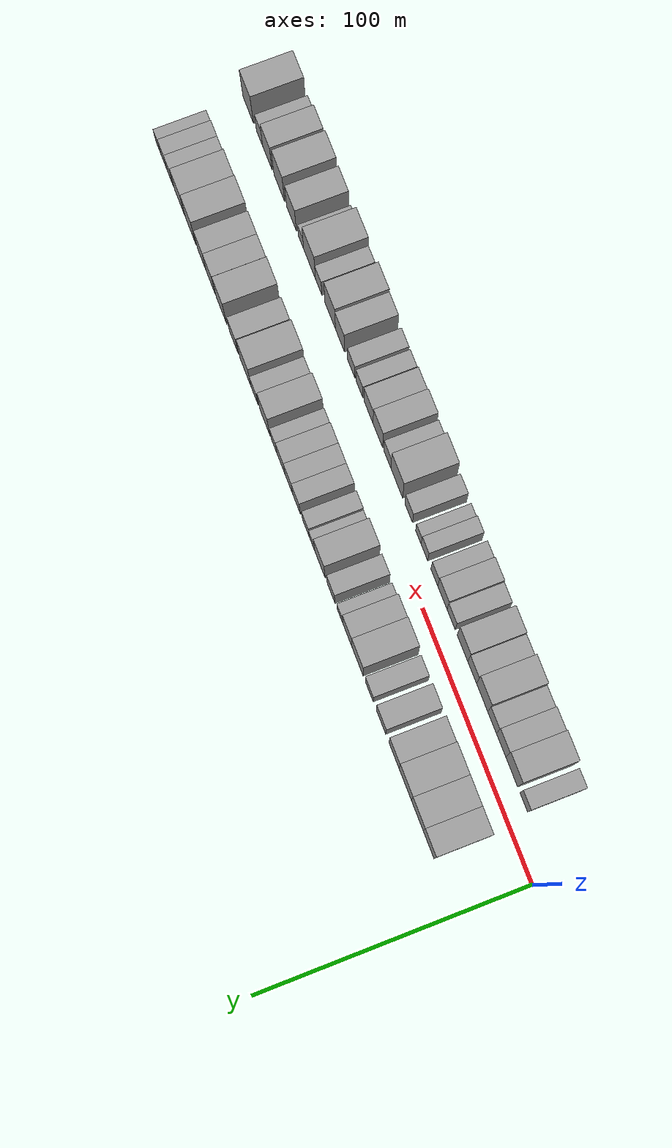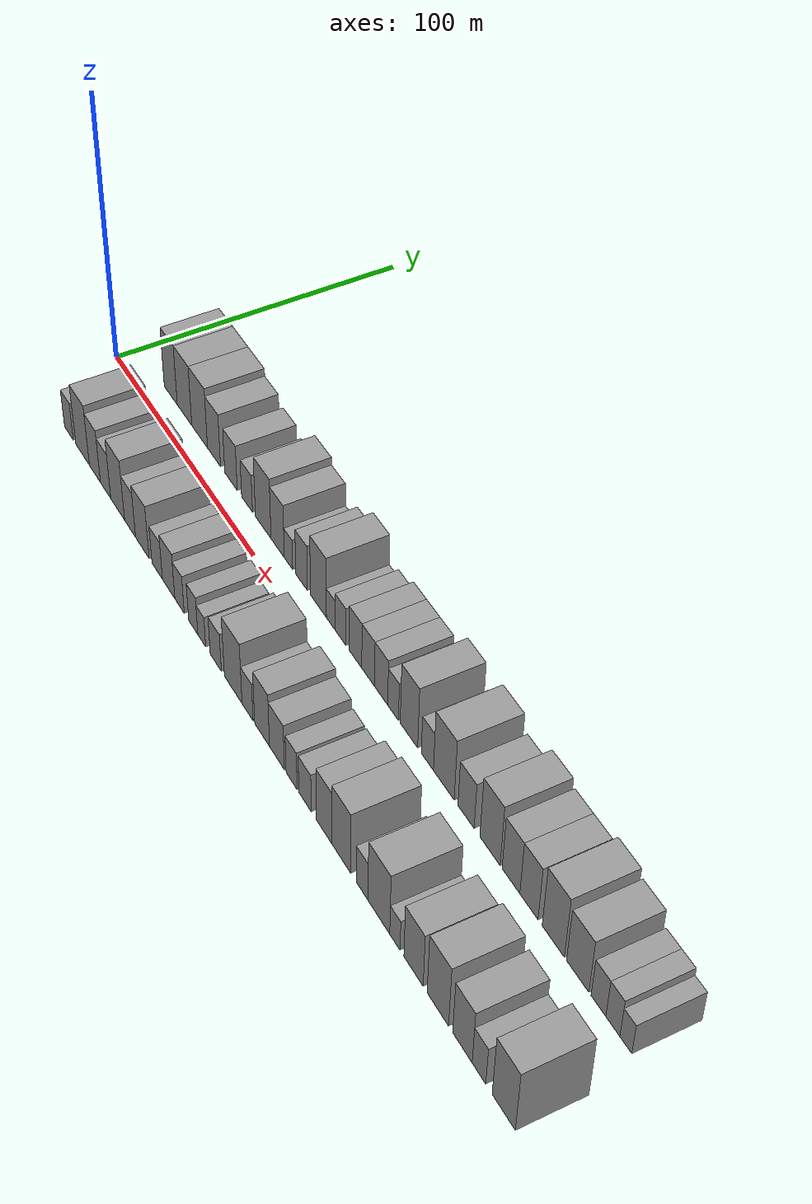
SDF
<sdf version="1.6">
 <world name="default">
  <scene>
   <sky><clouds><speed>12</speed></clouds></sky>
   <ambient>0.4 0.4 0.4 1</ambient>
   <background>0.7 0.7 0.7 1</background>
   <shadows>1</shadows>
  </scene>
  <gravity>0 0 -9.8066</gravity>
  <magnetic_field>6e-06 2.3e-05 -4.2e-05</magnetic_field>
  <physics default="0" name="default_physics" type="ode">
   <ode>
    <solver>
     <type>quick</type>
     <iters>10</iters>
     <sor>1.0</sor>
     <use_dynamic_moi_rescaling>0</use_dynamic_moi_rescaling>
    </solver>
    <constraints>
     <cfm>0</cfm>
     <erp>0.2</erp>
     <contact_max_correcting_vel>100</contact_max_correcting_vel>
     <contact_surface_layer>0.001</contact_surface_layer>
    </constraints>
   </ode>
   <max_step_size>0.004</max_step_size>
   <real_time_factor>1</real_time_factor>
   <real_time_update_rate>250</real_time_update_rate>
  </physics>
  <light name="sun" type="directional">
   <pose>0 0 10 0 0 0</pose>
   <diffuse>0.8 0.8 0.8 1</diffuse>
   <specular>0.2 0.2 0.2 1</specular>
   <attenuation>
    <range>1000</range>
    <constant>0.9</constant>
    <linear>0.01</linear>
    <quadratic>0.001</quadratic>
   </attenuation>
   <direction>-0.5 0.1 -0.9</direction>
  </light>
  <model name="building_1">
   <static>1</static>
   <pose>24.9117 17.5000 0 0.000000 0.000000 1.570796</pose>
   <link name="link">
    <pose>0 0 12.00 0 0 0</pose>
    <collision name="collision"><geometry><box><size>20.0000 9.8234 24.0000</size></box></geometry></collision>
    <visual name="visual">
     <cast_shadows>0</cast_shadows>
     <geometry><box><size>20.0000 9.8234 24.0000</size></box></geometry>
     <material>
      <script>
       <uri>model://grey_wall/materials/scripts</uri>
       <uri>model://grey_wall/materials/textures</uri>
       <name>vrc/grey_wall</name>
      </script>
     </material>
    </visual>
   </link>
  </model>
  <model name="building_2">
   <static>1</static>
   <pose>35.2457 17.5000 0 0.000000 0.000000 1.570796</pose>
   <link name="link">
    <pose>0 0 12.00 0 0 0</pose>
    <collision name="collision"><geometry><box><size>20.0000 10.8446 24.0000</size></box></geometry></collision>
    <visual name="visual">
     <cast_shadows>0</cast_shadows>
     <geometry><box><size>20.0000 10.8446 24.0000</size></box></geometry>
     <material>
      <script>
       <uri>model://grey_wall/materials/scripts</uri>
       <uri>model://grey_wall/materials/textures</uri>
       <name>vrc/grey_wall</name>
      </script>
     </material>
    </visual>
   </link>
  </model>
  <model name="building_3">
   <static>1</static>
   <pose>46.3990 17.5000 0 0.000000 0.000000 1.570796</pose>
   <link name="link">
    <pose>0 0 12.00 0 0 0</pose>
    <collision name="collision"><geometry><box><size>20.0000 11.4619 24.0000</size></box></geometry></collision>
    <visual name="visual">
     <cast_shadows>0</cast_shadows>
     <geometry><box><size>20.0000 11.4619 24.0000</size></box></geometry>
     <material>
      <script>
       <uri>model://grey_wall/materials/scripts</uri>
       <uri>model://grey_wall/materials/textures</uri>
       <name>vrc/grey_wall</name>
      </script>
     </material>
    </visual>
   </link>
  </model>
  <model name="building_4">
   <static>1</static>
   <pose>56.7983 17.5000 0 0.000000 0.000000 1.570796</pose>
   <link name="link">
    <pose>0 0 10.50 0 0 0</pose>
    <collision name="collision"><geometry><box><size>20.0000 9.3368 21.0000</size></box></geometry></collision>
    <visual name="visual">
     <cast_shadows>0</cast_shadows>
     <geometry><box><size>20.0000 9.3368 21.0000</size></box></geometry>
     <material>
      <script>
       <uri>model://grey_wall/materials/scripts</uri>
       <uri>model://grey_wall/materials/textures</uri>
       <name>vrc/grey_wall</name>
      </script>
     </material>
    </visual>
   </link>
  </model>
  <model name="building_5">
   <static>1</static>
   <pose>68.8451 17.5000 0 0.000000 0.000000 1.570796</pose>
   <link name="link">
    <pose>0 0 9.00 0 0 0</pose>
    <collision name="collision"><geometry><box><size>20.0000 8.7569 18.0000</size></box></geometry></collision>
    <visual name="visual">
     <cast_shadows>0</cast_shadows>
     <geometry><box><size>20.0000 8.7569 18.0000</size></box></geometry>
     <material>
      <script>
       <uri>model://grey_wall/materials/scripts</uri>
       <uri>model://grey_wall/materials/textures</uri>
       <name>vrc/grey_wall</name>
      </script>
     </material>
    </visual>
   </link>
  </model>
  <model name="building_6">
   <static>1</static>
   <pose>79.9495 17.5000 0 0.000000 0.000000 1.570796</pose>
   <link name="link">
    <pose>0 0 7.50 0 0 0</pose>
    <collision name="collision"><geometry><box><size>20.0000 7.4519 15.0000</size></box></geometry></collision>
    <visual name="visual">
     <cast_shadows>0</cast_shadows>
     <geometry><box><size>20.0000 7.4519 15.0000</size></box></geometry>
     <material>
      <script>
       <uri>model://grey_wall/materials/scripts</uri>
       <uri>model://grey_wall/materials/textures</uri>
       <name>vrc/grey_wall</name>
      </script>
     </material>
    </visual>
   </link>
  </model>
  <model name="building_7">
   <static>1</static>
   <pose>90.9206 17.5000 0 0.000000 0.000000 1.570796</pose>
   <link name="link">
    <pose>0 0 12.00 0 0 0</pose>
    <collision name="collision"><geometry><box><size>20.0000 10.4904 24.0000</size></box></geometry></collision>
    <visual name="visual">
     <cast_shadows>0</cast_shadows>
     <geometry><box><size>20.0000 10.4904 24.0000</size></box></geometry>
     <material>
      <script>
       <uri>model://grey_wall/materials/scripts</uri>
       <uri>model://grey_wall/materials/textures</uri>
       <name>vrc/grey_wall</name>
      </script>
     </material>
    </visual>
   </link>
  </model>
  <model name="building_8">
   <static>1</static>
   <pose>100.5300 17.5000 0 0.000000 0.000000 1.570796</pose>
   <link name="link">
    <pose>0 0 10.50 0 0 0</pose>
    <collision name="collision"><geometry><box><size>20.0000 8.7284 21.0000</size></box></geometry></collision>
    <visual name="visual">
     <cast_shadows>0</cast_shadows>
     <geometry><box><size>20.0000 8.7284 21.0000</size></box></geometry>
     <material>
      <script>
       <uri>model://grey_wall/materials/scripts</uri>
       <uri>model://grey_wall/materials/textures</uri>
       <name>vrc/grey_wall</name>
      </script>
     </material>
    </visual>
   </link>
  </model>
  <model name="building_9">
   <static>1</static>
   <pose>107.6261 17.5000 0 0.000000 0.000000 1.570796</pose>
   <link name="link">
    <pose>0 0 6.00 0 0 0</pose>
    <collision name="collision"><geometry><box><size>20.0000 5.4639 12.0000</size></box></geometry></collision>
    <visual name="visual">
     <cast_shadows>0</cast_shadows>
     <geometry><box><size>20.0000 5.4639 12.0000</size></box></geometry>
     <material>
      <script>
       <uri>model://grey_wall/materials/scripts</uri>
       <uri>model://grey_wall/materials/textures</uri>
       <name>vrc/grey_wall</name>
      </script>
     </material>
    </visual>
   </link>
  </model>
  <model name="building_10">
   <static>1</static>
   <pose>116.0709 17.5000 0 0.000000 0.000000 1.570796</pose>
   <link name="link">
    <pose>0 0 9.00 0 0 0</pose>
    <collision name="collision"><geometry><box><size>20.0000 7.4257 18.0000</size></box></geometry></collision>
    <visual name="visual">
     <cast_shadows>0</cast_shadows>
     <geometry><box><size>20.0000 7.4257 18.0000</size></box></geometry>
     <material>
      <script>
       <uri>model://grey_wall/materials/scripts</uri>
       <uri>model://grey_wall/materials/textures</uri>
       <name>vrc/grey_wall</name>
      </script>
     </material>
    </visual>
   </link>
  </model>
  <model name="building_11">
   <static>1</static>
   <pose>126.7624 17.5000 0 0.000000 0.000000 1.570796</pose>
   <link name="link">
    <pose>0 0 12.00 0 0 0</pose>
    <collision name="collision"><geometry><box><size>20.0000 9.9573 24.0000</size></box></geometry></collision>
    <visual name="visual">
     <cast_shadows>0</cast_shadows>
     <geometry><box><size>20.0000 9.9573 24.0000</size></box></geometry>
     <material>
      <script>
       <uri>model://grey_wall/materials/scripts</uri>
       <uri>model://grey_wall/materials/textures</uri>
       <name>vrc/grey_wall</name>
      </script>
     </material>
    </visual>
   </link>
  </model>
  <model name="building_12">
   <static>1</static>
   <pose>134.4356 17.5000 0 0.000000 0.000000 1.570796</pose>
   <link name="link">
    <pose>0 0 6.00 0 0 0</pose>
    <collision name="collision"><geometry><box><size>20.0000 5.3891 12.0000</size></box></geometry></collision>
    <visual name="visual">
     <cast_shadows>0</cast_shadows>
     <geometry><box><size>20.0000 5.3891 12.0000</size></box></geometry>
     <material>
      <script>
       <uri>model://grey_wall/materials/scripts</uri>
       <uri>model://grey_wall/materials/textures</uri>
       <name>vrc/grey_wall</name>
      </script>
     </material>
    </visual>
   </link>
  </model>
  <model name="building_13">
   <static>1</static>
   <pose>140.4093 17.5000 0 0.000000 0.000000 1.570796</pose>
   <link name="link">
    <pose>0 0 7.50 0 0 0</pose>
    <collision name="collision"><geometry><box><size>20.0000 6.5584 15.0000</size></box></geometry></collision>
    <visual name="visual">
     <cast_shadows>0</cast_shadows>
     <geometry><box><size>20.0000 6.5584 15.0000</size></box></geometry>
     <material>
      <script>
       <uri>model://grey_wall/materials/scripts</uri>
       <uri>model://grey_wall/materials/textures</uri>
       <name>vrc/grey_wall</name>
      </script>
     </material>
    </visual>
   </link>
  </model>
  <model name="building_14">
   <static>1</static>
   <pose>149.4242 17.5000 0 0.000000 0.000000 1.570796</pose>
   <link name="link">
    <pose>0 0 9.00 0 0 0</pose>
    <collision name="collision"><geometry><box><size>20.0000 7.4716 18.0000</size></box></geometry></collision>
    <visual name="visual">
     <cast_shadows>0</cast_shadows>
     <geometry><box><size>20.0000 7.4716 18.0000</size></box></geometry>
     <material>
      <script>
       <uri>model://grey_wall/materials/scripts</uri>
       <uri>model://grey_wall/materials/textures</uri>
       <name>vrc/grey_wall</name>
      </script>
     </material>
    </visual>
   </link>
  </model>
  <model name="building_15">
   <static>1</static>
   <pose>156.9158 17.5000 0 0.000000 0.000000 1.570796</pose>
   <link name="link">
    <pose>0 0 9.00 0 0 0</pose>
    <collision name="collision"><geometry><box><size>20.0000 7.5116 18.0000</size></box></geometry></collision>
    <visual name="visual">
     <cast_shadows>0</cast_shadows>
     <geometry><box><size>20.0000 7.5116 18.0000</size></box></geometry>
     <material>
      <script>
       <uri>model://grey_wall/materials/scripts</uri>
       <uri>model://grey_wall/materials/textures</uri>
       <name>vrc/grey_wall</name>
      </script>
     </material>
    </visual>
   </link>
  </model>
  <model name="building_16">
   <static>1</static>
   <pose>164.5097 17.5000 0 0.000000 0.000000 1.570796</pose>
   <link name="link">
    <pose>0 0 9.00 0 0 0</pose>
    <collision name="collision"><geometry><box><size>20.0000 7.6762 18.0000</size></box></geometry></collision>
    <visual name="visual">
     <cast_shadows>0</cast_shadows>
     <geometry><box><size>20.0000 7.6762 18.0000</size></box></geometry>
     <material>
      <script>
       <uri>model://grey_wall/materials/scripts</uri>
       <uri>model://grey_wall/materials/textures</uri>
       <name>vrc/grey_wall</name>
      </script>
     </material>
    </visual>
   </link>
  </model>
  <model name="building_17">
   <static>1</static>
   <pose>171.4271 17.5000 0 0.000000 0.000000 1.570796</pose>
   <link name="link">
    <pose>0 0 7.50 0 0 0</pose>
    <collision name="collision"><geometry><box><size>20.0000 6.1585 15.0000</size></box></geometry></collision>
    <visual name="visual">
     <cast_shadows>0</cast_shadows>
     <geometry><box><size>20.0000 6.1585 15.0000</size></box></geometry>
     <material>
      <script>
       <uri>model://grey_wall/materials/scripts</uri>
       <uri>model://grey_wall/materials/textures</uri>
       <name>vrc/grey_wall</name>
      </script>
     </material>
    </visual>
   </link>
  </model>
  <model name="building_18">
   <static>1</static>
   <pose>180.4077 17.5000 0 0.000000 0.000000 1.570796</pose>
   <link name="link">
    <pose>0 0 12.00 0 0 0</pose>
    <collision name="collision"><geometry><box><size>20.0000 9.8027 24.0000</size></box></geometry></collision>
    <visual name="visual">
     <cast_shadows>0</cast_shadows>
     <geometry><box><size>20.0000 9.8027 24.0000</size></box></geometry>
     <material>
      <script>
       <uri>model://grey_wall/materials/scripts</uri>
       <uri>model://grey_wall/materials/textures</uri>
       <name>vrc/grey_wall</name>
      </script>
     </material>
    </visual>
   </link>
  </model>
  <model name="building_19">
   <static>1</static>
   <pose>190.6633 17.5000 0 0.000000 0.000000 1.570796</pose>
   <link name="link">
    <pose>0 0 7.50 0 0 0</pose>
    <collision name="collision"><geometry><box><size>20.0000 6.7086 15.0000</size></box></geometry></collision>
    <visual name="visual">
     <cast_shadows>0</cast_shadows>
     <geometry><box><size>20.0000 6.7086 15.0000</size></box></geometry>
     <material>
      <script>
       <uri>model://grey_wall/materials/scripts</uri>
       <uri>model://grey_wall/materials/textures</uri>
       <name>vrc/grey_wall</name>
      </script>
     </material>
    </visual>
   </link>
  </model>
  <model name="building_20">
   <static>1</static>
   <pose>199.6065 17.5000 0 0.000000 0.000000 1.570796</pose>
   <link name="link">
    <pose>0 0 12.00 0 0 0</pose>
    <collision name="collision"><geometry><box><size>20.0000 11.1778 24.0000</size></box></geometry></collision>
    <visual name="visual">
     <cast_shadows>0</cast_shadows>
     <geometry><box><size>20.0000 11.1778 24.0000</size></box></geometry>
     <material>
      <script>
       <uri>model://grey_wall/materials/scripts</uri>
       <uri>model://grey_wall/materials/textures</uri>
       <name>vrc/grey_wall</name>
      </script>
     </material>
    </visual>
   </link>
  </model>
  <model name="building_21">
   <static>1</static>
   <pose>211.4469 17.5000 0 0.000000 0.000000 1.570796</pose>
   <link name="link">
    <pose>0 0 9.00 0 0 0</pose>
    <collision name="collision"><geometry><box><size>20.0000 8.5030 18.0000</size></box></geometry></collision>
    <visual name="visual">
     <cast_shadows>0</cast_shadows>
     <geometry><box><size>20.0000 8.5030 18.0000</size></box></geometry>
     <material>
      <script>
       <uri>model://grey_wall/materials/scripts</uri>
       <uri>model://grey_wall/materials/textures</uri>
       <name>vrc/grey_wall</name>
      </script>
     </material>
    </visual>
   </link>
  </model>
  <model name="building_22">
   <static>1</static>
   <pose>223.8881 17.5000 0 0.000000 0.000000 1.570796</pose>
   <link name="link">
    <pose>0 0 12.00 0 0 0</pose>
    <collision name="collision"><geometry><box><size>20.0000 10.3796 24.0000</size></box></geometry></collision>
    <visual name="visual">
     <cast_shadows>0</cast_shadows>
     <geometry><box><size>20.0000 10.3796 24.0000</size></box></geometry>
     <material>
      <script>
       <uri>model://grey_wall/materials/scripts</uri>
       <uri>model://grey_wall/materials/textures</uri>
       <name>vrc/grey_wall</name>
      </script>
     </material>
    </visual>
   </link>
  </model>
  <model name="building_23">
   <static>1</static>
   <pose>234.5119 17.5000 0 0.000000 0.000000 1.570796</pose>
   <link name="link">
    <pose>0 0 10.50 0 0 0</pose>
    <collision name="collision"><geometry><box><size>20.0000 8.8680 21.0000</size></box></geometry></collision>
    <visual name="visual">
     <cast_shadows>0</cast_shadows>
     <geometry><box><size>20.0000 8.8680 21.0000</size></box></geometry>
     <material>
      <script>
       <uri>model://grey_wall/materials/scripts</uri>
       <uri>model://grey_wall/materials/textures</uri>
       <name>vrc/grey_wall</name>
      </script>
     </material>
    </visual>
   </link>
  </model>
  <model name="building_24">
   <static>1</static>
   <pose>243.3995 17.5000 0 0.000000 0.000000 1.570796</pose>
   <link name="link">
    <pose>0 0 10.50 0 0 0</pose>
    <collision name="collision"><geometry><box><size>20.0000 8.9071 21.0000</size></box></geometry></collision>
    <visual name="visual">
     <cast_shadows>0</cast_shadows>
     <geometry><box><size>20.0000 8.9071 21.0000</size></box></geometry>
     <material>
      <script>
       <uri>model://grey_wall/materials/scripts</uri>
       <uri>model://grey_wall/materials/textures</uri>
       <name>vrc/grey_wall</name>
      </script>
     </material>
    </visual>
   </link>
  </model>
  <model name="building_25">
   <static>1</static>
   <pose>255.1642 17.5000 0 0.000000 0.000000 1.570796</pose>
   <link name="link">
    <pose>0 0 12.00 0 0 0</pose>
    <collision name="collision"><geometry><box><size>20.0000 10.6224 24.0000</size></box></geometry></collision>
    <visual name="visual">
     <cast_shadows>0</cast_shadows>
     <geometry><box><size>20.0000 10.6224 24.0000</size></box></geometry>
     <material>
      <script>
       <uri>model://grey_wall/materials/scripts</uri>
       <uri>model://grey_wall/materials/textures</uri>
       <name>vrc/grey_wall</name>
      </script>
     </material>
    </visual>
   </link>
  </model>
  <model name="building_26">
   <static>1</static>
   <pose>266.6777 17.5000 0 0.000000 0.000000 1.570796</pose>
   <link name="link">
    <pose>0 0 10.50 0 0 0</pose>
    <collision name="collision"><geometry><box><size>20.0000 10.4044 21.0000</size></box></geometry></collision>
    <visual name="visual">
     <cast_shadows>0</cast_shadows>
     <geometry><box><size>20.0000 10.4044 21.0000</size></box></geometry>
     <material>
      <script>
       <uri>model://grey_wall/materials/scripts</uri>
       <uri>model://grey_wall/materials/textures</uri>
       <name>vrc/grey_wall</name>
      </script>
     </material>
    </visual>
   </link>
  </model>
  <model name="building_27">
   <static>1</static>
   <pose>276.2367 17.5000 0 0.000000 0.000000 1.570796</pose>
   <link name="link">
    <pose>0 0 7.50 0 0 0</pose>
    <collision name="collision"><geometry><box><size>20.0000 6.7136 15.0000</size></box></geometry></collision>
    <visual name="visual">
     <cast_shadows>0</cast_shadows>
     <geometry><box><size>20.0000 6.7136 15.0000</size></box></geometry>
     <material>
      <script>
       <uri>model://grey_wall/materials/scripts</uri>
       <uri>model://grey_wall/materials/textures</uri>
       <name>vrc/grey_wall</name>
      </script>
     </material>
    </visual>
   </link>
  </model>
  <model name="building_28">
   <static>1</static>
   <pose>282.7351 17.5000 0 0.000000 0.000000 1.570796</pose>
   <link name="link">
    <pose>0 0 7.50 0 0 0</pose>
    <collision name="collision"><geometry><box><size>20.0000 6.2833 15.0000</size></box></geometry></collision>
    <visual name="visual">
     <cast_shadows>0</cast_shadows>
     <geometry><box><size>20.0000 6.2833 15.0000</size></box></geometry>
     <material>
      <script>
       <uri>model://grey_wall/materials/scripts</uri>
       <uri>model://grey_wall/materials/textures</uri>
       <name>vrc/grey_wall</name>
      </script>
     </material>
    </visual>
   </link>
  </model>
  <model name="building_29">
   <static>1</static>
   <pose>288.5434 17.5000 0 0.000000 0.000000 1.570796</pose>
   <link name="link">
    <pose>0 0 6.00 0 0 0</pose>
    <collision name="collision"><geometry><box><size>20.0000 5.3332 12.0000</size></box></geometry></collision>
    <visual name="visual">
     <cast_shadows>0</cast_shadows>
     <geometry><box><size>20.0000 5.3332 12.0000</size></box></geometry>
     <material>
      <script>
       <uri>model://grey_wall/materials/scripts</uri>
       <uri>model://grey_wall/materials/textures</uri>
       <name>vrc/grey_wall</name>
      </script>
     </material>
    </visual>
   </link>
  </model>
  <model name="building_30">
   <static>1</static>
   <pose>26.4767 -17.5000 0 0.000000 0.000000 1.570796</pose>
   <link name="link">
    <pose>0 0 7.50 0 0 0</pose>
    <collision name="collision"><geometry><box><size>20.0000 6.9533 15.0000</size></box></geometry></collision>
    <visual name="visual">
     <cast_shadows>0</cast_shadows>
     <geometry><box><size>20.0000 6.9533 15.0000</size></box></geometry>
     <material>
      <script>
       <uri>model://grey_wall/materials/scripts</uri>
       <uri>model://grey_wall/materials/textures</uri>
       <name>vrc/grey_wall</name>
      </script>
     </material>
    </visual>
   </link>
  </model>
  <model name="building_31">
   <static>1</static>
   <pose>37.3039 -17.5000 0 0.000000 0.000000 1.570796</pose>
   <link name="link">
    <pose>0 0 12.00 0 0 0</pose>
    <collision name="collision"><geometry><box><size>20.0000 10.7011 24.0000</size></box></geometry></collision>
    <visual name="visual">
     <cast_shadows>0</cast_shadows>
     <geometry><box><size>20.0000 10.7011 24.0000</size></box></geometry>
     <material>
      <script>
       <uri>model://grey_wall/materials/scripts</uri>
       <uri>model://grey_wall/materials/textures</uri>
       <name>vrc/grey_wall</name>
      </script>
     </material>
    </visual>
   </link>
  </model>
  <model name="building_32">
   <static>1</static>
   <pose>46.9244 -17.5000 0 0.000000 0.000000 1.570796</pose>
   <link name="link">
    <pose>0 0 10.50 0 0 0</pose>
    <collision name="collision"><geometry><box><size>20.0000 8.5400 21.0000</size></box></geometry></collision>
    <visual name="visual">
     <cast_shadows>0</cast_shadows>
     <geometry><box><size>20.0000 8.5400 21.0000</size></box></geometry>
     <material>
      <script>
       <uri>model://grey_wall/materials/scripts</uri>
       <uri>model://grey_wall/materials/textures</uri>
       <name>vrc/grey_wall</name>
      </script>
     </material>
    </visual>
   </link>
  </model>
  <model name="building_33">
   <static>1</static>
   <pose>55.1166 -17.5000 0 0.000000 0.000000 1.570796</pose>
   <link name="link">
    <pose>0 0 9.00 0 0 0</pose>
    <collision name="collision"><geometry><box><size>20.0000 7.8444 18.0000</size></box></geometry></collision>
    <visual name="visual">
     <cast_shadows>0</cast_shadows>
     <geometry><box><size>20.0000 7.8444 18.0000</size></box></geometry>
     <material>
      <script>
       <uri>model://grey_wall/materials/scripts</uri>
       <uri>model://grey_wall/materials/textures</uri>
       <name>vrc/grey_wall</name>
      </script>
     </material>
    </visual>
   </link>
  </model>
  <model name="building_34">
   <static>1</static>
   <pose>64.1968 -17.5000 0 0.000000 0.000000 1.570796</pose>
   <link name="link">
    <pose>0 0 12.00 0 0 0</pose>
    <collision name="collision"><geometry><box><size>20.0000 10.3160 24.0000</size></box></geometry></collision>
    <visual name="visual">
     <cast_shadows>0</cast_shadows>
     <geometry><box><size>20.0000 10.3160 24.0000</size></box></geometry>
     <material>
      <script>
       <uri>model://grey_wall/materials/scripts</uri>
       <uri>model://grey_wall/materials/textures</uri>
       <name>vrc/grey_wall</name>
      </script>
     </material>
    </visual>
   </link>
  </model>
  <model name="building_35">
   <static>1</static>
   <pose>73.3608 -17.5000 0 0.000000 0.000000 1.570796</pose>
   <link name="link">
    <pose>0 0 9.00 0 0 0</pose>
    <collision name="collision"><geometry><box><size>20.0000 8.0120 18.0000</size></box></geometry></collision>
    <visual name="visual">
     <cast_shadows>0</cast_shadows>
     <geometry><box><size>20.0000 8.0120 18.0000</size></box></geometry>
     <material>
      <script>
       <uri>model://grey_wall/materials/scripts</uri>
       <uri>model://grey_wall/materials/textures</uri>
       <name>vrc/grey_wall</name>
      </script>
     </material>
    </visual>
   </link>
  </model>
  <model name="building_36">
   <static>1</static>
   <pose>82.2645 -17.5000 0 0.000000 0.000000 1.570796</pose>
   <link name="link">
    <pose>0 0 10.50 0 0 0</pose>
    <collision name="collision"><geometry><box><size>20.0000 9.7955 21.0000</size></box></geometry></collision>
    <visual name="visual">
     <cast_shadows>0</cast_shadows>
     <geometry><box><size>20.0000 9.7955 21.0000</size></box></geometry>
     <material>
      <script>
       <uri>model://grey_wall/materials/scripts</uri>
       <uri>model://grey_wall/materials/textures</uri>
       <name>vrc/grey_wall</name>
      </script>
     </material>
    </visual>
   </link>
  </model>
  <model name="building_37">
   <static>1</static>
   <pose>92.8717 -17.5000 0 0.000000 0.000000 1.570796</pose>
   <link name="link">
    <pose>0 0 7.50 0 0 0</pose>
    <collision name="collision"><geometry><box><size>20.0000 7.4189 15.0000</size></box></geometry></collision>
    <visual name="visual">
     <cast_shadows>0</cast_shadows>
     <geometry><box><size>20.0000 7.4189 15.0000</size></box></geometry>
     <material>
      <script>
       <uri>model://grey_wall/materials/scripts</uri>
       <uri>model://grey_wall/materials/textures</uri>
       <name>vrc/grey_wall</name>
      </script>
     </material>
    </visual>
   </link>
  </model>
  <model name="building_38">
   <static>1</static>
   <pose>100.8918 -17.5000 0 0.000000 0.000000 1.570796</pose>
   <link name="link">
    <pose>0 0 9.00 0 0 0</pose>
    <collision name="collision"><geometry><box><size>20.0000 8.6213 18.0000</size></box></geometry></collision>
    <visual name="visual">
     <cast_shadows>0</cast_shadows>
     <geometry><box><size>20.0000 8.6213 18.0000</size></box></geometry>
     <material>
      <script>
       <uri>model://grey_wall/materials/scripts</uri>
       <uri>model://grey_wall/materials/textures</uri>
       <name>vrc/grey_wall</name>
      </script>
     </material>
    </visual>
   </link>
  </model>
  <model name="building_39">
   <static>1</static>
   <pose>108.4394 -17.5000 0 0.000000 0.000000 1.570796</pose>
   <link name="link">
    <pose>0 0 7.50 0 0 0</pose>
    <collision name="collision"><geometry><box><size>20.0000 6.4739 15.0000</size></box></geometry></collision>
    <visual name="visual">
     <cast_shadows>0</cast_shadows>
     <geometry><box><size>20.0000 6.4739 15.0000</size></box></geometry>
     <material>
      <script>
       <uri>model://grey_wall/materials/scripts</uri>
       <uri>model://grey_wall/materials/textures</uri>
       <name>vrc/grey_wall</name>
      </script>
     </material>
    </visual>
   </link>
  </model>
  <model name="building_40">
   <static>1</static>
   <pose>117.7674 -17.5000 0 0.000000 0.000000 1.570796</pose>
   <link name="link">
    <pose>0 0 7.50 0 0 0</pose>
    <collision name="collision"><geometry><box><size>20.0000 6.1821 15.0000</size></box></geometry></collision>
    <visual name="visual">
     <cast_shadows>0</cast_shadows>
     <geometry><box><size>20.0000 6.1821 15.0000</size></box></geometry>
     <material>
      <script>
       <uri>model://grey_wall/materials/scripts</uri>
       <uri>model://grey_wall/materials/textures</uri>
       <name>vrc/grey_wall</name>
      </script>
     </material>
    </visual>
   </link>
  </model>
  <model name="building_41">
   <static>1</static>
   <pose>123.4606 -17.5000 0 0.000000 0.000000 1.570796</pose>
   <link name="link">
    <pose>0 0 6.00 0 0 0</pose>
    <collision name="collision"><geometry><box><size>20.0000 5.2042 12.0000</size></box></geometry></collision>
    <visual name="visual">
     <cast_shadows>0</cast_shadows>
     <geometry><box><size>20.0000 5.2042 12.0000</size></box></geometry>
     <material>
      <script>
       <uri>model://grey_wall/materials/scripts</uri>
       <uri>model://grey_wall/materials/textures</uri>
       <name>vrc/grey_wall</name>
      </script>
     </material>
    </visual>
   </link>
  </model>
  <model name="building_42">
   <static>1</static>
   <pose>132.6906 -17.5000 0 0.000000 0.000000 1.570796</pose>
   <link name="link">
    <pose>0 0 7.50 0 0 0</pose>
    <collision name="collision"><geometry><box><size>20.0000 7.2560 15.0000</size></box></geometry></collision>
    <visual name="visual">
     <cast_shadows>0</cast_shadows>
     <geometry><box><size>20.0000 7.2560 15.0000</size></box></geometry>
     <material>
      <script>
       <uri>model://grey_wall/materials/scripts</uri>
       <uri>model://grey_wall/materials/textures</uri>
       <name>vrc/grey_wall</name>
      </script>
     </material>
    </visual>
   </link>
  </model>
  <model name="building_43">
   <static>1</static>
   <pose>143.9384 -17.5000 0 0.000000 0.000000 1.570796</pose>
   <link name="link">
    <pose>0 0 12.00 0 0 0</pose>
    <collision name="collision"><geometry><box><size>20.0000 11.2396 24.0000</size></box></geometry></collision>
    <visual name="visual">
     <cast_shadows>0</cast_shadows>
     <geometry><box><size>20.0000 11.2396 24.0000</size></box></geometry>
     <material>
      <script>
       <uri>model://grey_wall/materials/scripts</uri>
       <uri>model://grey_wall/materials/textures</uri>
       <name>vrc/grey_wall</name>
      </script>
     </material>
    </visual>
   </link>
  </model>
  <model name="building_44">
   <static>1</static>
   <pose>153.0250 -17.5000 0 0.000000 0.000000 1.570796</pose>
   <link name="link">
    <pose>0 0 7.50 0 0 0</pose>
    <collision name="collision"><geometry><box><size>20.0000 6.9337 15.0000</size></box></geometry></collision>
    <visual name="visual">
     <cast_shadows>0</cast_shadows>
     <geometry><box><size>20.0000 6.9337 15.0000</size></box></geometry>
     <material>
      <script>
       <uri>model://grey_wall/materials/scripts</uri>
       <uri>model://grey_wall/materials/textures</uri>
       <name>vrc/grey_wall</name>
      </script>
     </material>
    </visual>
   </link>
  </model>
  <model name="building_45">
   <static>1</static>
   <pose>162.0478 -17.5000 0 0.000000 0.000000 1.570796</pose>
   <link name="link">
    <pose>0 0 10.50 0 0 0</pose>
    <collision name="collision"><geometry><box><size>20.0000 9.1119 21.0000</size></box></geometry></collision>
    <visual name="visual">
     <cast_shadows>0</cast_shadows>
     <geometry><box><size>20.0000 9.1119 21.0000</size></box></geometry>
     <material>
      <script>
       <uri>model://grey_wall/materials/scripts</uri>
       <uri>model://grey_wall/materials/textures</uri>
       <name>vrc/grey_wall</name>
      </script>
     </material>
    </visual>
   </link>
  </model>
  <model name="building_46">
   <static>1</static>
   <pose>171.0785 -17.5000 0 0.000000 0.000000 1.570796</pose>
   <link name="link">
    <pose>0 0 9.00 0 0 0</pose>
    <collision name="collision"><geometry><box><size>20.0000 8.9495 18.0000</size></box></geometry></collision>
    <visual name="visual">
     <cast_shadows>0</cast_shadows>
     <geometry><box><size>20.0000 8.9495 18.0000</size></box></geometry>
     <material>
      <script>
       <uri>model://grey_wall/materials/scripts</uri>
       <uri>model://grey_wall/materials/textures</uri>
       <name>vrc/grey_wall</name>
      </script>
     </material>
    </visual>
   </link>
  </model>
  <model name="building_47">
   <static>1</static>
   <pose>179.8401 -17.5000 0 0.000000 0.000000 1.570796</pose>
   <link name="link">
    <pose>0 0 7.50 0 0 0</pose>
    <collision name="collision"><geometry><box><size>20.0000 6.5736 15.0000</size></box></geometry></collision>
    <visual name="visual">
     <cast_shadows>0</cast_shadows>
     <geometry><box><size>20.0000 6.5736 15.0000</size></box></geometry>
     <material>
      <script>
       <uri>model://grey_wall/materials/scripts</uri>
       <uri>model://grey_wall/materials/textures</uri>
       <name>vrc/grey_wall</name>
      </script>
     </material>
    </visual>
   </link>
  </model>
  <model name="building_48">
   <static>1</static>
   <pose>187.7456 -17.5000 0 0.000000 0.000000 1.570796</pose>
   <link name="link">
    <pose>0 0 7.50 0 0 0</pose>
    <collision name="collision"><geometry><box><size>20.0000 7.2375 15.0000</size></box></geometry></collision>
    <visual name="visual">
     <cast_shadows>0</cast_shadows>
     <geometry><box><size>20.0000 7.2375 15.0000</size></box></geometry>
     <material>
      <script>
       <uri>model://grey_wall/materials/scripts</uri>
       <uri>model://grey_wall/materials/textures</uri>
       <name>vrc/grey_wall</name>
      </script>
     </material>
    </visual>
   </link>
  </model>
  <model name="building_49">
   <static>1</static>
   <pose>198.7672 -17.5000 0 0.000000 0.000000 1.570796</pose>
   <link name="link">
    <pose>0 0 10.50 0 0 0</pose>
    <collision name="collision"><geometry><box><size>20.0000 8.8056 21.0000</size></box></geometry></collision>
    <visual name="visual">
     <cast_shadows>0</cast_shadows>
     <geometry><box><size>20.0000 8.8056 21.0000</size></box></geometry>
     <material>
      <script>
       <uri>model://grey_wall/materials/scripts</uri>
       <uri>model://grey_wall/materials/textures</uri>
       <name>vrc/grey_wall</name>
      </script>
     </material>
    </visual>
   </link>
  </model>
  <model name="building_50">
   <static>1</static>
   <pose>208.3605 -17.5000 0 0.000000 0.000000 1.570796</pose>
   <link name="link">
    <pose>0 0 12.00 0 0 0</pose>
    <collision name="collision"><geometry><box><size>20.0000 10.3810 24.0000</size></box></geometry></collision>
    <visual name="visual">
     <cast_shadows>0</cast_shadows>
     <geometry><box><size>20.0000 10.3810 24.0000</size></box></geometry>
     <material>
      <script>
       <uri>model://grey_wall/materials/scripts</uri>
       <uri>model://grey_wall/materials/textures</uri>
       <name>vrc/grey_wall</name>
      </script>
     </material>
    </visual>
   </link>
  </model>
  <model name="building_51">
   <static>1</static>
   <pose>219.7620 -17.5000 0 0.000000 0.000000 1.570796</pose>
   <link name="link">
    <pose>0 0 7.50 0 0 0</pose>
    <collision name="collision"><geometry><box><size>20.0000 6.4220 15.0000</size></box></geometry></collision>
    <visual name="visual">
     <cast_shadows>0</cast_shadows>
     <geometry><box><size>20.0000 6.4220 15.0000</size></box></geometry>
     <material>
      <script>
       <uri>model://grey_wall/materials/scripts</uri>
       <uri>model://grey_wall/materials/textures</uri>
       <name>vrc/grey_wall</name>
      </script>
     </material>
    </visual>
   </link>
  </model>
  <model name="building_52">
   <static>1</static>
   <pose>228.7739 -17.5000 0 0.000000 0.000000 1.570796</pose>
   <link name="link">
    <pose>0 0 12.00 0 0 0</pose>
    <collision name="collision"><geometry><box><size>20.0000 11.6018 24.0000</size></box></geometry></collision>
    <visual name="visual">
     <cast_shadows>0</cast_shadows>
     <geometry><box><size>20.0000 11.6018 24.0000</size></box></geometry>
     <material>
      <script>
       <uri>model://grey_wall/materials/scripts</uri>
       <uri>model://grey_wall/materials/textures</uri>
       <name>vrc/grey_wall</name>
      </script>
     </material>
    </visual>
   </link>
  </model>
  <model name="building_53">
   <static>1</static>
   <pose>237.2526 -17.5000 0 0.000000 0.000000 1.570796</pose>
   <link name="link">
    <pose>0 0 6.00 0 0 0</pose>
    <collision name="collision"><geometry><box><size>20.0000 5.3558 12.0000</size></box></geometry></collision>
    <visual name="visual">
     <cast_shadows>0</cast_shadows>
     <geometry><box><size>20.0000 5.3558 12.0000</size></box></geometry>
     <material>
      <script>
       <uri>model://grey_wall/materials/scripts</uri>
       <uri>model://grey_wall/materials/textures</uri>
       <name>vrc/grey_wall</name>
      </script>
     </material>
    </visual>
   </link>
  </model>
  <model name="building_54">
   <static>1</static>
   <pose>246.8552 -17.5000 0 0.000000 0.000000 1.570796</pose>
   <link name="link">
    <pose>0 0 10.50 0 0 0</pose>
    <collision name="collision"><geometry><box><size>20.0000 9.8492 21.0000</size></box></geometry></collision>
    <visual name="visual">
     <cast_shadows>0</cast_shadows>
     <geometry><box><size>20.0000 9.8492 21.0000</size></box></geometry>
     <material>
      <script>
       <uri>model://grey_wall/materials/scripts</uri>
       <uri>model://grey_wall/materials/textures</uri>
       <name>vrc/grey_wall</name>
      </script>
     </material>
    </visual>
   </link>
  </model>
  <model name="building_55">
   <static>1</static>
   <pose>259.1132 -17.5000 0 0.000000 0.000000 1.570796</pose>
   <link name="link">
    <pose>0 0 12.00 0 0 0</pose>
    <collision name="collision"><geometry><box><size>20.0000 10.6668 24.0000</size></box></geometry></collision>
    <visual name="visual">
     <cast_shadows>0</cast_shadows>
     <geometry><box><size>20.0000 10.6668 24.0000</size></box></geometry>
     <material>
      <script>
       <uri>model://grey_wall/materials/scripts</uri>
       <uri>model://grey_wall/materials/textures</uri>
       <name>vrc/grey_wall</name>
      </script>
     </material>
    </visual>
   </link>
  </model>
  <model name="building_56">
   <static>1</static>
   <pose>271.1464 -17.5000 0 0.000000 0.000000 1.570796</pose>
   <link name="link">
    <pose>0 0 10.50 0 0 0</pose>
    <collision name="collision"><geometry><box><size>20.0000 9.3997 21.0000</size></box></geometry></collision>
    <visual name="visual">
     <cast_shadows>0</cast_shadows>
     <geometry><box><size>20.0000 9.3997 21.0000</size></box></geometry>
     <material>
      <script>
       <uri>model://grey_wall/materials/scripts</uri>
       <uri>model://grey_wall/materials/textures</uri>
       <name>vrc/grey_wall</name>
      </script>
     </material>
    </visual>
   </link>
  </model>
  <model name="building_57">
   <static>1</static>
   <pose>279.0650 -17.5000 0 0.000000 0.000000 1.570796</pose>
   <link name="link">
    <pose>0 0 7.50 0 0 0</pose>
    <collision name="collision"><geometry><box><size>20.0000 6.4376 15.0000</size></box></geometry></collision>
    <visual name="visual">
     <cast_shadows>0</cast_shadows>
     <geometry><box><size>20.0000 6.4376 15.0000</size></box></geometry>
     <material>
      <script>
       <uri>model://grey_wall/materials/scripts</uri>
       <uri>model://grey_wall/materials/textures</uri>
       <name>vrc/grey_wall</name>
      </script>
     </material>
    </visual>
   </link>
  </model>
  <model name="building_58">
   <static>1</static>
   <pose>290.6388 -17.5000 0 0.000000 0.000000 1.570796</pose>
   <link name="link">
    <pose>0 0 12.00 0 0 0</pose>
    <collision name="collision"><geometry><box><size>20.0000 10.7099 24.0000</size></box></geometry></collision>
    <visual name="visual">
     <cast_shadows>0</cast_shadows>
     <geometry><box><size>20.0000 10.7099 24.0000</size></box></geometry>
     <material>
      <script>
       <uri>model://grey_wall/materials/scripts</uri>
       <uri>model://grey_wall/materials/textures</uri>
       <name>vrc/grey_wall</name>
      </script>
     </material>
    </visual>
   </link>
  </model>
 </world>
</sdf>
